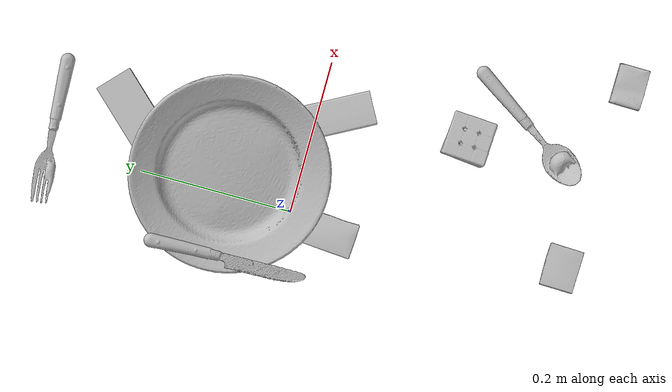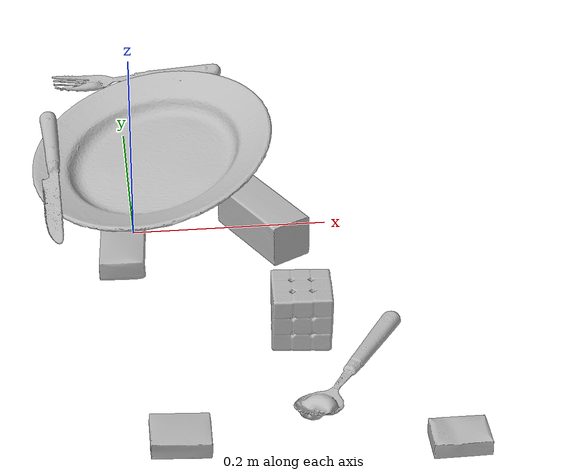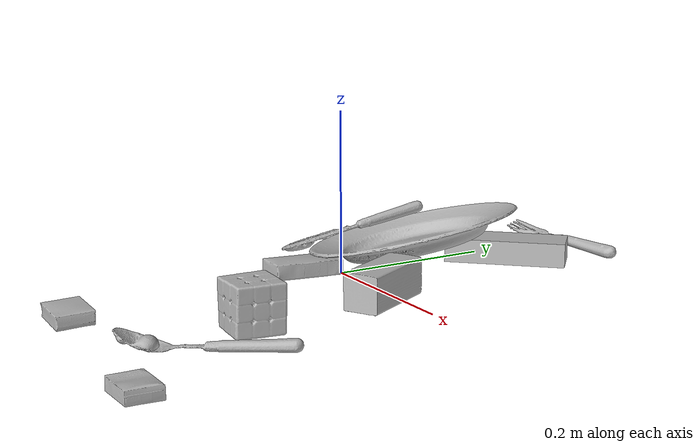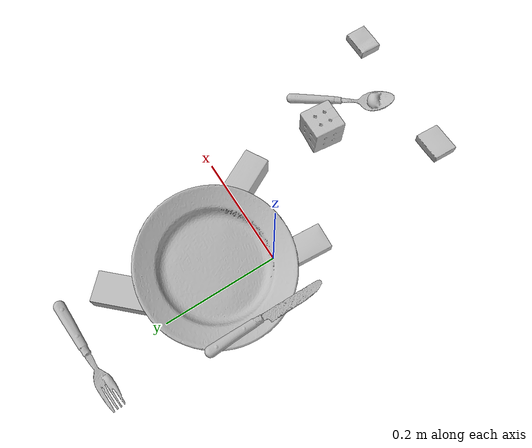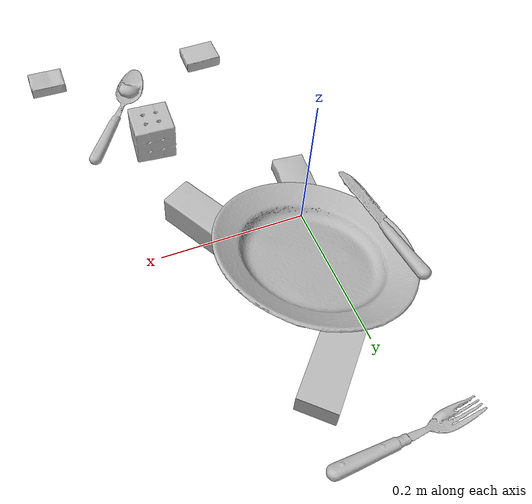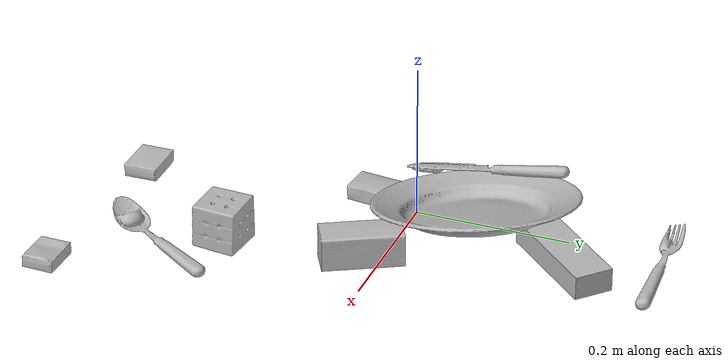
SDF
<sdf version="1.4">
  <world name="default">
    <light name="light1" type="point">
      <pose>0 0 1 0 0 0</pose>
      <diffuse>3 3 3 1</diffuse>
      <specular>3 3 3 1</specular>
    </light>
    <light name="light2" type="point">
      <pose>0 0.5 2 0 0 0</pose>
      <diffuse>1 1 1 1</diffuse>
      <specular>1 1 1 1</specular>
    </light>
    <light name="light3" type="point">
      <pose>0 0.5 2 0 0 0</pose>
      <diffuse>3 3 3 1</diffuse>
      <specular>3 3 3 1</specular>
    </light>
    <scene>
      <ambient>0.7 0.7 0.7</ambient>
    </scene>
    <model name="box11">
      <link name="link_box11">
        <collision name="default">
          <geometry>
            <mesh>
              <uri>model://pudding_box/collision_meshes/collision.obj</uri>
              <scale>0.5 0.5 0.5</scale>
            </mesh>
          </geometry>
          <surface>
            <friction>
              <ode>
                <mu>0.5</mu>
                <mu2>0.5</mu2>
              </ode>
            </friction>
          <contact>
        <ode>
            <max_vel>0</max_vel>
            <min_depth>0.0001</min_depth>
            <kp>1e8</kp>
        </ode>
    </contact></surface>
        </collision>
        <visual name="default">
          <geometry>
            <mesh>
              <uri>model://pudding_box/visual_meshes/visual.dae</uri>
              <scale>0.5 0.5 0.5</scale>
            </mesh>
          </geometry>
        </visual>
        <inertial>
          <mass>0.05641884729266167</mass>
          <pose>0.00024474109522998333 0.000403394311433658 -0.00025944141088984907 0.005213101771016666 -0.006603799659696515 0.020079828883224148</pose>
          <inertia>
            <ixx>1.5944652e-05</ixx>
            <iyy>1.0727675e-05</iyy>
            <izz>2.3546443e-05</izz>
            <ixy>0</ixy>
            <ixz>0</ixz>
            <iyz>0</iyz>
          </inertia>
        </inertial>
      </link>
      <pose>0.0226120725274086 -0.35559117794036865 0.009862901642918587 0.022348496893776743 -0.011391715255338915 1.5416377648258914</pose>
    </model>
    <model name="box12">
      <link name="link_box12">
        <collision name="default">
          <geometry>
            <mesh>
              <uri>model://wood_block/collision_meshes/collision.obj</uri>
              <scale>0.5 0.5 0.5</scale>
            </mesh>
          </geometry>
          <surface>
            <friction>
              <ode>
                <mu>0.5</mu>
                <mu2>0.5</mu2>
              </ode>
            </friction>
          <contact>
        <ode>
            <max_vel>0</max_vel>
            <min_depth>0.0001</min_depth>
            <kp>1e8</kp>
        </ode>
    </contact></surface>
        </collision>
        <visual name="default">
          <geometry>
            <mesh>
              <uri>model://wood_block/visual_meshes/visual.dae</uri>
              <scale>0.5 0.5 0.5</scale>
            </mesh>
          </geometry>
        </visual>
        <inertial>
          <mass>0.1445801854133606</mass>
          <pose>-2.906657982748584e-06 -0.000285404734313488 0.00013204291462898254 -0.052208162951624955 -0.0051926954609686745 -0.006861377578377277</pose>
          <inertia>
            <ixx>4.836754e-05</ixx>
            <iyy>0.0001527931</iyy>
            <izz>0.00015222155</izz>
            <ixy>0</ixy>
            <ixz>0</ixz>
            <iyz>0</iyz>
          </inertia>
        </inertial>
      </link>
      <pose>0.13258957862854004 -0.02221817336976528 0.022629447281360626 -0.0052358670482331076 0.0057186661597852205 2.0688821997303424</pose>
    </model>
    <model name="box13">
      <link name="link_box13">
        <collision name="default">
          <geometry>
            <mesh>
              <uri>model://sugar_box/collision_meshes/collision.obj</uri>
              <scale>0.5 0.5 0.5</scale>
            </mesh>
          </geometry>
          <surface>
            <friction>
              <ode>
                <mu>0.5</mu>
                <mu2>0.5</mu2>
              </ode>
            </friction>
          <contact>
        <ode>
            <max_vel>0</max_vel>
            <min_depth>0.0001</min_depth>
            <kp>1e8</kp>
        </ode>
    </contact></surface>
        </collision>
        <visual name="default">
          <geometry>
            <mesh>
              <uri>model://sugar_box/visual_meshes/visual.dae</uri>
              <scale>0.5 0.5 0.5</scale>
            </mesh>
          </geometry>
        </visual>
        <inertial>
          <mass>0.1187032163143158</mass>
          <pose>0.0005171863595023751 1.924554817378521e-05 -0.00018182402709499002 -0.0004046259512710581 0.0010506635216588768 0.002615378556274426</pose>
          <inertia>
            <ixx>2.4725794e-05</ixx>
            <iyy>7.991886e-05</iyy>
            <izz>9.567241e-05</izz>
            <ixy>0</ixy>
            <ixz>0</ixz>
            <iyz>0</iyz>
          </inertia>
        </inertial>
      </link>
      <pose>-0.01310330256819725 -0.04615720734000206 0.011490117758512497 0.023734229161716813 -0.022529275315811403 -1.6448006820909464</pose>
    </model>
    <model name="box21">
      <link name="link_box21">
        <collision name="default">
          <geometry>
            <mesh>
              <uri>model://jenga/collision_meshes/collision.obj</uri>
              <scale>1.0 1.0 1.0</scale>
            </mesh>
          </geometry>
          <surface>
            <friction>
              <ode>
                <mu>0.5</mu>
                <mu2>0.5</mu2>
              </ode>
            </friction>
          <contact>
        <ode>
            <max_vel>0</max_vel>
            <min_depth>0.0001</min_depth>
            <kp>1e8</kp>
        </ode>
    </contact></surface>
        </collision>
        <visual name="default">
          <geometry>
            <mesh>
              <uri>model://jenga/visual_meshes/visual.dae</uri>
              <scale>1.0 1.0 1.0</scale>
            </mesh>
          </geometry>
        </visual>
        <inertial>
          <mass>0.20898528397083282</mass>
          <pose>-2.502855807051674e-07 -0.00010250010382151231 -4.092339804628864e-05 0.0 -7.342154049184251e-07 0.0</pose>
          <inertia>
            <ixx>5.7831294e-05</ixx>
            <iyy>0.0003918633</iyy>
            <izz>0.00041834736</izz>
            <ixy>0</ixy>
            <ixz>0</ixz>
            <iyz>0</iyz>
          </inertia>
        </inertial>
      </link>
      <pose>0.05387846380472183 0.21016797423362732 0.014999979175627232 1.4370383104172732e-06 -1.1417635716028914e-07 0.8223443428712582</pose>
    </model>
    <model name="box22">
      <link name="link_box22">
        <collision name="default">
          <geometry>
            <mesh>
              <uri>model://rubiks_cube/collision_meshes/collision.obj</uri>
              <scale>1.0 1.0 1.0</scale>
            </mesh>
          </geometry>
          <surface>
            <friction>
              <ode>
                <mu>0.5</mu>
                <mu2>0.5</mu2>
              </ode>
            </friction>
          <contact>
        <ode>
            <max_vel>0</max_vel>
            <min_depth>0.0001</min_depth>
            <kp>1e8</kp>
        </ode>
    </contact></surface>
        </collision>
        <visual name="default">
          <geometry>
            <mesh>
              <uri>model://rubiks_cube/visual_meshes/visual.dae</uri>
              <scale>1.0 1.0 1.0</scale>
            </mesh>
          </geometry>
        </visual>
        <inertial>
          <mass>0.28698527812957764</mass>
          <pose>2.6721041649580002e-05 5.2569666877388954e-05 -7.2643156272533815e-06 -0.05467256881712973 -0.09813902151902686 -0.034455808755049874</pose>
          <inertia>
            <ixx>0.00015857864</ixx>
            <iyy>0.00015783912</iyy>
            <izz>0.00015989273</izz>
            <ixy>0</ixy>
            <ixz>0</ixz>
            <iyz>0</iyz>
          </inertia>
        </inertial>
      </link>
      <pose>0.15061688423156738 -0.19676022231578827 0.028678948059678078 -4.635791826472203e-06 -1.5065822001967066e-06 3.0737762469821215</pose>
    </model>
    <model name="box23">
      <link name="link_box23">
        <collision name="default">
          <geometry>
            <mesh>
              <uri>model://cracker_box/collision_meshes/collision.obj</uri>
              <scale>0.25 0.25 0.25</scale>
            </mesh>
          </geometry>
          <surface>
            <friction>
              <ode>
                <mu>0.5</mu>
                <mu2>0.5</mu2>
              </ode>
            </friction>
          <contact>
        <ode>
            <max_vel>0</max_vel>
            <min_depth>0.0001</min_depth>
            <kp>1e8</kp>
        </ode>
    </contact></surface>
        </collision>
        <visual name="default">
          <geometry>
            <mesh>
              <uri>model://cracker_box/visual_meshes/visual.dae</uri>
              <scale>0.25 0.25 0.25</scale>
            </mesh>
          </geometry>
        </visual>
        <inertial>
          <mass>0.04468085244297981</mass>
          <pose>0.00023660414444748312 6.358561222441494e-05 -0.0004257383698131889 -0.0003162076226327385 -0.011106488669128663 0.0025467943033026423</pose>
          <inertia>
            <ixx>7.10301e-06</ixx>
            <iyy>1.1728463e-05</iyy>
            <izz>1.6737597e-05</izz>
            <ixy>0</ixy>
            <ixz>0</ixz>
            <iyz>0</iyz>
          </inertia>
        </inertial>
      </link>
      <pose>0.27154991030693054 -0.37910401821136475 0.009096027351915836 -0.0140505377630667 -0.005016595643891707 -0.01569639929735886</pose>
    </model>
    <model name="plate1">
      <link name="link_plate1">
        <collision name="default">
          <geometry>
            <mesh>
              <uri>model://plate/collision_meshes/collision.obj</uri>
              <scale>1.0 1.0 1.0</scale>
            </mesh>
          </geometry>
          <surface>
            <friction>
              <ode>
                <mu>0.5</mu>
                <mu2>0.5</mu2>
              </ode>
            </friction>
          <contact>
        <ode>
            <max_vel>0</max_vel>
            <min_depth>0.0001</min_depth>
            <kp>1e8</kp>
        </ode>
    </contact></surface>
        </collision>
        <visual name="default">
          <geometry>
            <mesh>
              <uri>model://plate/visual_meshes/visual.dae</uri>
              <scale>1.0 1.0 1.0</scale>
            </mesh>
          </geometry>
        </visual>
        <inertial>
          <mass>0.20184239745140076</mass>
          <pose>-0.0006044648471288383 0.00027825962752103806 -0.0010561983799561858 0.0022188105697194356 -0.003225466439192432 0.4526020757977656</pose>
          <inertia>
            <ixx>0.00094422296</ixx>
            <iyy>0.00093519164</iyy>
            <izz>0.0018467589</izz>
            <ixy>0</ixy>
            <ixz>0</ixz>
            <iyz>0</iyz>
          </inertia>
        </inertial>
      </link>
      <pose>0.027655985206365585 0.0882900208234787 0.04036495089530945 -0.0876363395585206 0.23354402524399578 -2.9285212144733133</pose>
    </model>
    <model name="silverware1">
      <link name="link_silverware1">
        <collision name="default">
          <geometry>
            <mesh>
              <uri>model://fork/collision_meshes/collision.obj</uri>
              <scale>1.0 1.0 1.0</scale>
            </mesh>
          </geometry>
          <surface>
            <friction>
              <ode>
                <mu>0.5</mu>
                <mu2>0.5</mu2>
              </ode>
            </friction>
          <contact>
        <ode>
            <max_vel>0</max_vel>
            <min_depth>0.0001</min_depth>
            <kp>1e8</kp>
        </ode>
    </contact></surface>
        </collision>
        <visual name="default">
          <geometry>
            <mesh>
              <uri>model://fork/visual_meshes/visual.dae</uri>
              <scale>1.0 1.0 1.0</scale>
            </mesh>
          </geometry>
        </visual>
        <inertial>
          <mass>0.03151825815439224</mass>
          <pose>-0.029570046812295914 0.00046588233090005815 0.0003218861820641905 -0.013550990610422763 -0.010977834578584837 0.014453900606944525</pose>
          <inertia>
            <ixx>1.1048933e-06</ixx>
            <iyy>8.2285114e-05</iyy>
            <izz>8.2779305e-05</izz>
            <ixy>0</ixy>
            <ixz>0</ixz>
            <iyz>0</iyz>
          </inertia>
        </inertial>
      </link>
      <pose>0.023158634081482887 0.32393497228622437 0.005746247712522745 -0.1909524095849299 0.0240954674973133 -3.0856387837270263</pose>
    </model>
    <model name="silverware2">
      <link name="link_silverware2">
        <collision name="default">
          <geometry>
            <mesh>
              <uri>model://spoon/collision_meshes/collision.obj</uri>
              <scale>1.0 1.0 1.0</scale>
            </mesh>
          </geometry>
          <surface>
            <friction>
              <ode>
                <mu>0.5</mu>
                <mu2>0.5</mu2>
              </ode>
            </friction>
          <contact>
        <ode>
            <max_vel>0</max_vel>
            <min_depth>0.0001</min_depth>
            <kp>1e8</kp>
        </ode>
    </contact></surface>
        </collision>
        <visual name="default">
          <geometry>
            <mesh>
              <uri>model://spoon/visual_meshes/visual.dae</uri>
              <scale>1.0 1.0 1.0</scale>
            </mesh>
          </geometry>
        </visual>
        <inertial>
          <mass>0.04083608463406563</mass>
          <pose>-0.005526324734091759 -0.001603417913429439 -0.0007271658978424966 0.03521537575369321 -0.03906582415196765 0.006150608891198343</pose>
          <inertia>
            <ixx>2.2713682e-06</ixx>
            <iyy>0.0001553799</iyy>
            <izz>0.0001565001</izz>
            <ixy>0</ixy>
            <ixz>0</ixz>
            <iyz>0</iyz>
          </inertia>
        </inertial>
      </link>
      <pose>0.18969710171222687 -0.2683367431163788 0.008385265246033669 0.006729714592709238 0.02689296420138192 -2.1721365476287327</pose>
    </model>
    <model name="silverware3">
      <link name="link_silverware3">
        <collision name="default">
          <geometry>
            <mesh>
              <uri>model://knife/collision_meshes/collision.obj</uri>
              <scale>1.0 1.0 1.0</scale>
            </mesh>
          </geometry>
          <surface>
            <friction>
              <ode>
                <mu>0.5</mu>
                <mu2>0.5</mu2>
              </ode>
            </friction>
          <contact>
        <ode>
            <max_vel>0</max_vel>
            <min_depth>0.0001</min_depth>
            <kp>1e8</kp>
        </ode>
    </contact></surface>
        </collision>
        <visual name="default">
          <geometry>
            <mesh>
              <uri>model://knife/visual_meshes/visual.dae</uri>
              <scale>1.0 1.0 1.0</scale>
            </mesh>
          </geometry>
        </visual>
        <inertial>
          <mass>0.024411516264081</mass>
          <pose>-0.023785248398780823 0.0015275123296305537 5.062021955382079e-05 0.07305335097392199 0.01724841144103926 -0.007409823891069756</pose>
          <inertia>
            <ixx>6.9289786e-07</ixx>
            <iyy>9.37851e-05</iyy>
            <izz>9.400826e-05</izz>
            <ixy>0</ixy>
            <ixz>0</ixz>
            <iyz>0</iyz>
          </inertia>
        </inertial>
      </link>
      <pose>-0.08170372247695923 0.06510245054960251 0.03302248939871788 0.07110620158204084 0.14664117964341228 -1.553623983969157</pose>
    </model>
  <physics type="ode">
      <max_contacts>50</max_contacts>
      <ode>
        <solver>
          <type>quick</type>
          <iters>75</iters>
        </solver>
        <constraints>
          <contact_max_correcting_vel>0</contact_max_correcting_vel>
          <contact_surface_layer>0</contact_surface_layer>
        </constraints>
      </ode>
    </physics></world>
</sdf>
